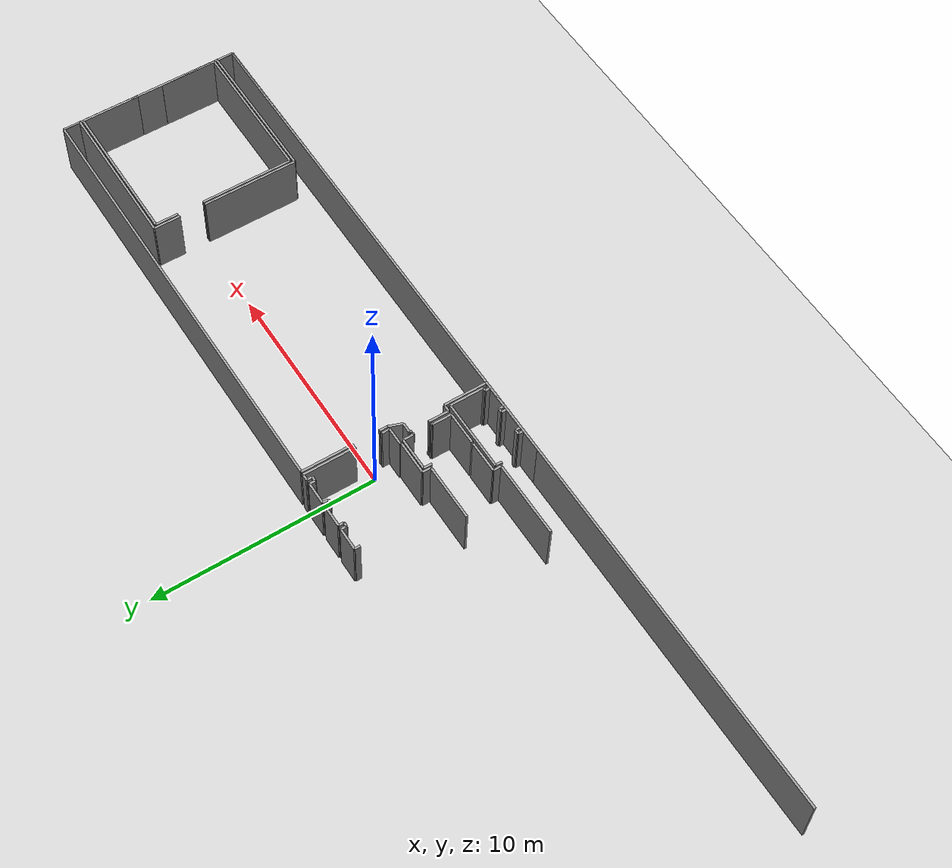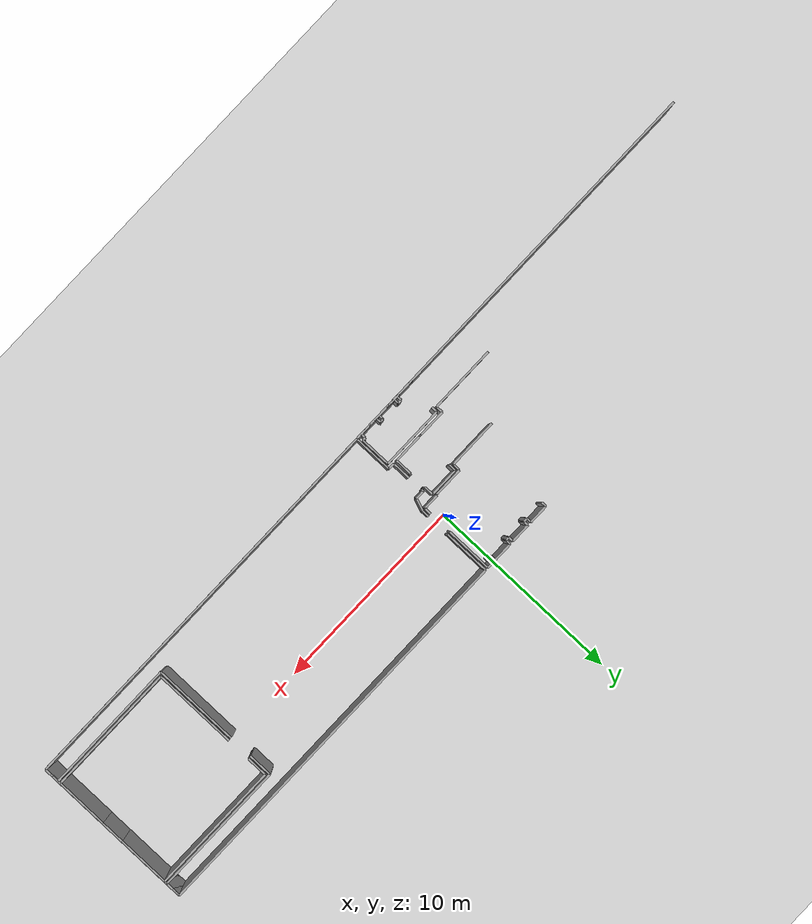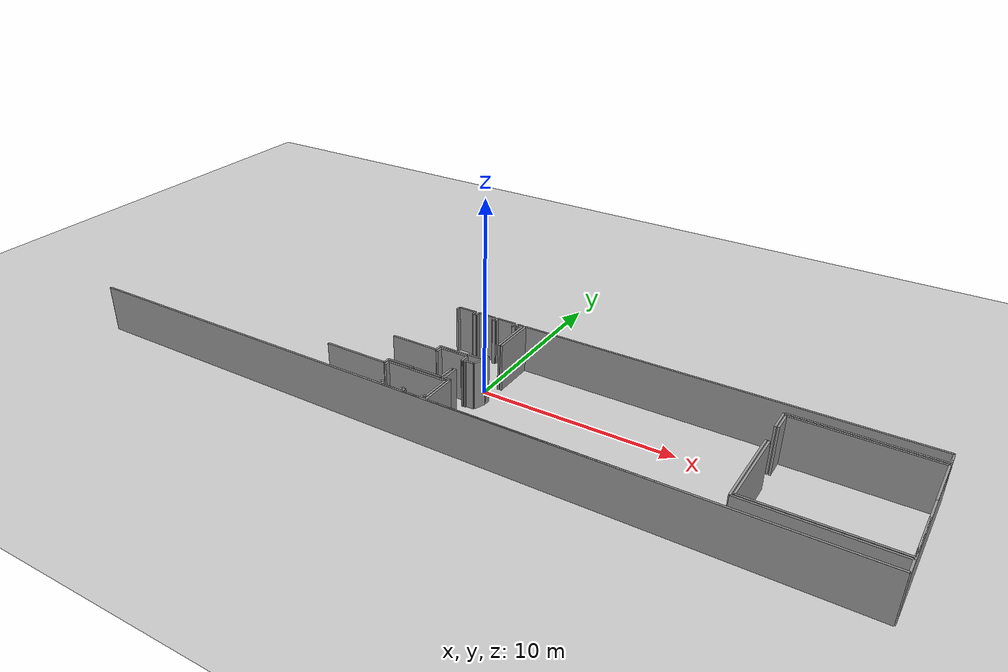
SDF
<sdf version="1.6">
 <world name="default">
  <model name="ground_plane">
   <static>1</static>
   <link name="link">
    <collision name="collision">
     <geometry><plane><normal>0 0 1</normal><size>100 100</size></plane></geometry>
     <surface><friction><ode><mu>100</mu><mu2>50</mu2></ode></friction></surface>
    </collision>
    <visual name="visual">
     <cast_shadows>0</cast_shadows>
     <geometry><plane><normal>0 0 1</normal><size>100 100</size></plane></geometry>
     <material>
      <script><uri>file://media/materials/scripts/gazebo.material</uri><name>Gazebo/Grey</name></script>
     </material>
    </visual>
   </link>
  </model>
  <model name="0510025536_Layout1_PLAN5">
   <static>1</static>
   <link name="Wall_7">
    <collision name="Wall_7_Collision">
     <geometry><box><size>1.38529183769 0.1 2.5</size></box></geometry>
     <pose>0.692645918847 0 1.25 0 0 0</pose>
    </collision>
    <visual name="Wall_7_Visual">
     <pose>0.692645918847 0 1.25 0 0 0</pose>
     <geometry><box><size>1.38529183769 0.1 2.5</size></box></geometry>
     <material>
      <script><uri>file://media/materials/scripts/gazebo.material</uri><name>Gazebo/Grey</name></script>
      <ambient>1 1 1 1</ambient>
     </material>
    </visual>
    <pose>18.5006036268 -6.22759909011 0 0 0 3.14159265359</pose>
   </link>
   <link name="Wall_8">
    <collision name="Wall_8_Collision">
     <geometry><box><size>0.352708696039 0.1 2.5</size></box></geometry>
     <pose>0.176354348019 0 1.25 0 0 0</pose>
    </collision>
    <visual name="Wall_8_Visual">
     <pose>0.176354348019 0 1.25 0 0 0</pose>
     <geometry><box><size>0.352708696039 0.1 2.5</size></box></geometry>
     <material>
      <script><uri>file://media/materials/scripts/gazebo.material</uri><name>Gazebo/Grey</name></script>
      <ambient>1 1 1 1</ambient>
     </material>
    </visual>
    <pose>17.1153117891 -6.22759909011 0 0 0 -1.57079632679</pose>
   </link>
   <link name="Wall_9">
    <collision name="Wall_9_Collision">
     <geometry><box><size>3.36258276042 0.1 2.5</size></box></geometry>
     <pose>1.68129138021 0 1.25 0 0 0</pose>
    </collision>
    <visual name="Wall_9_Visual">
     <pose>1.68129138021 0 1.25 0 0 0</pose>
     <geometry><box><size>3.36258276042 0.1 2.5</size></box></geometry>
     <material>
      <script><uri>file://media/materials/scripts/gazebo.material</uri><name>Gazebo/Grey</name></script>
      <ambient>1 1 1 1</ambient>
     </material>
    </visual>
    <pose>17.1153117891 -6.58030778615 0 0 0 3.14159265359</pose>
   </link>
   <link name="Wall_110">
    <collision name="Wall_110_Collision">
     <geometry><box><size>0.243649210202 0.1 2.5</size></box></geometry>
     <pose>0.121824605101 0 1.25 0 0 0</pose>
    </collision>
    <visual name="Wall_110_Visual">
     <pose>0.121824605101 0 1.25 0 0 0</pose>
     <geometry><box><size>0.243649210202 0.1 2.5</size></box></geometry>
     <material>
      <script><uri>file://media/materials/scripts/gazebo.material</uri><name>Gazebo/Grey</name></script>
      <ambient>1 1 1 1</ambient>
     </material>
    </visual>
    <pose>17.0013851648 -0.248814985195 0 0 0 1.57079632679</pose>
   </link>
   <link name="Wall_111">
    <collision name="Wall_111_Collision">
     <geometry><box><size>0.972538155571 0.1 2.5</size></box></geometry>
     <pose>0.486269077785 0 1.25 0 0 0</pose>
    </collision>
    <visual name="Wall_111_Visual">
     <pose>0.486269077785 0 1.25 0 0 0</pose>
     <geometry><box><size>0.972538155571 0.1 2.5</size></box></geometry>
     <material>
      <script><uri>file://media/materials/scripts/gazebo.material</uri><name>Gazebo/Grey</name></script>
      <ambient>1 1 1 1</ambient>
     </material>
    </visual>
    <pose>17.0013851648 -0.00516577499333 0 0 0 0.0</pose>
   </link>
   <link name="Wall_112">
    <collision name="Wall_112_Collision">
     <geometry><box><size>0.242715177085 0.1 2.5</size></box></geometry>
     <pose>0.121357588543 0 1.25 0 0 0</pose>
    </collision>
    <visual name="Wall_112_Visual">
     <pose>0.121357588543 0 1.25 0 0 0</pose>
     <geometry><box><size>0.242715177085 0.1 2.5</size></box></geometry>
     <material>
      <script><uri>file://media/materials/scripts/gazebo.material</uri><name>Gazebo/Grey</name></script>
      <ambient>1 1 1 1</ambient>
     </material>
    </visual>
    <pose>17.9739233203 -0.00516577499333 0 0 0 -1.57079632679</pose>
   </link>
   <link name="Wall_113">
    <collision name="Wall_113_Collision">
     <geometry><box><size>0.189030511748 0.1 2.5</size></box></geometry>
     <pose>0.0945152558742 0 1.25 0 0 0</pose>
    </collision>
    <visual name="Wall_113_Visual">
     <pose>0.0945152558742 0 1.25 0 0 0</pose>
     <geometry><box><size>0.189030511748 0.1 2.5</size></box></geometry>
     <material>
      <script><uri>file://media/materials/scripts/gazebo.material</uri><name>Gazebo/Grey</name></script>
      <ambient>1 1 1 1</ambient>
     </material>
    </visual>
    <pose>17.9739233203 -0.247880952078 0 0 0 0.0</pose>
   </link>
   <link name="Wall_114">
    <collision name="Wall_114_Collision">
     <geometry><box><size>0.238871027182 0.1 2.5</size></box></geometry>
     <pose>0.119435513591 0 1.25 0 0 0</pose>
    </collision>
    <visual name="Wall_114_Visual">
     <pose>0.119435513591 0 1.25 0 0 0</pose>
     <geometry><box><size>0.238871027182 0.1 2.5</size></box></geometry>
     <material>
      <script><uri>file://media/materials/scripts/gazebo.material</uri><name>Gazebo/Grey</name></script>
      <ambient>1 1 1 1</ambient>
     </material>
    </visual>
    <pose>18.1629538321 -0.247880952078 0 0 0 1.57079632679</pose>
   </link>
   <link name="Wall_115">
    <collision name="Wall_115_Collision">
     <geometry><box><size>0.975270361287 0.1 2.5</size></box></geometry>
     <pose>0.487635180643 0 1.25 0 0 0</pose>
    </collision>
    <visual name="Wall_115_Visual">
     <pose>0.487635180643 0 1.25 0 0 0</pose>
     <geometry><box><size>0.975270361287 0.1 2.5</size></box></geometry>
     <material>
      <script><uri>file://media/materials/scripts/gazebo.material</uri><name>Gazebo/Grey</name></script>
      <ambient>1 1 1 1</ambient>
     </material>
    </visual>
    <pose>18.1629538321 -0.00900992489611 0 0 0 0.0</pose>
   </link>
   <link name="Wall_116">
    <collision name="Wall_116_Collision">
     <geometry><box><size>0.247448882337 0.1 2.5</size></box></geometry>
     <pose>0.123724441169 0 1.25 0 0 0</pose>
    </collision>
    <visual name="Wall_116_Visual">
     <pose>0.123724441169 0 1.25 0 0 0</pose>
     <geometry><box><size>0.247448882337 0.1 2.5</size></box></geometry>
     <material>
      <script><uri>file://media/materials/scripts/gazebo.material</uri><name>Gazebo/Grey</name></script>
      <ambient>1 1 1 1</ambient>
     </material>
    </visual>
    <pose>19.1382241934 -0.00900992489611 0 0 0 -1.57079632679</pose>
   </link>
   <link name="Wall_117">
    <collision name="Wall_117_Collision">
     <geometry><box><size>0.175178864165 0.1 2.5</size></box></geometry>
     <pose>0.0875894320824 0 1.25 0 0 0</pose>
    </collision>
    <visual name="Wall_117_Visual">
     <pose>0.0875894320824 0 1.25 0 0 0</pose>
     <geometry><box><size>0.175178864165 0.1 2.5</size></box></geometry>
     <material>
      <script><uri>file://media/materials/scripts/gazebo.material</uri><name>Gazebo/Grey</name></script>
      <ambient>1 1 1 1</ambient>
     </material>
    </visual>
    <pose>19.1382241934 -0.256458807233 0 0 0 0.0</pose>
   </link>
   <link name="Wall_118">
    <collision name="Wall_118_Collision">
     <geometry><box><size>0.249253408903 0.1 2.5</size></box></geometry>
     <pose>0.124626704452 0 1.25 0 0 0</pose>
    </collision>
    <visual name="Wall_118_Visual">
     <pose>0.124626704452 0 1.25 0 0 0</pose>
     <geometry><box><size>0.249253408903 0.1 2.5</size></box></geometry>
     <material>
      <script><uri>file://media/materials/scripts/gazebo.material</uri><name>Gazebo/Grey</name></script>
      <ambient>1 1 1 1</ambient>
     </material>
    </visual>
    <pose>19.3134030575 -0.256458807233 0 0 0 1.57079632679</pose>
   </link>
   <link name="Wall_119">
    <collision name="Wall_119_Collision">
     <geometry><box><size>0.973554790256 0.1 2.5</size></box></geometry>
     <pose>0.486777395128 0 1.25 0 0 0</pose>
    </collision>
    <visual name="Wall_119_Visual">
     <pose>0.486777395128 0 1.25 0 0 0</pose>
     <geometry><box><size>0.973554790256 0.1 2.5</size></box></geometry>
     <material>
      <script><uri>file://media/materials/scripts/gazebo.material</uri><name>Gazebo/Grey</name></script>
      <ambient>1 1 1 1</ambient>
     </material>
    </visual>
    <pose>19.3134030575 -0.00720539833018 0 0 0 0.0</pose>
   </link>
   <link name="Wall_120">
    <collision name="Wall_120_Collision">
     <geometry><box><size>0.245638001805 0.1 2.5</size></box></geometry>
     <pose>0.122819000902 0 1.25 0 0 0</pose>
    </collision>
    <visual name="Wall_120_Visual">
     <pose>0.122819000902 0 1.25 0 0 0</pose>
     <geometry><box><size>0.245638001805 0.1 2.5</size></box></geometry>
     <material>
      <script><uri>file://media/materials/scripts/gazebo.material</uri><name>Gazebo/Grey</name></script>
      <ambient>1 1 1 1</ambient>
     </material>
    </visual>
    <pose>20.2869578478 -0.00720539833018 0 0 0 -1.57079632679</pose>
   </link>
   <link name="Wall_121">
    <collision name="Wall_121_Collision">
     <geometry><box><size>0.19684589089 0.1 2.5</size></box></geometry>
     <pose>0.0984229454448 0 1.25 0 0 0</pose>
    </collision>
    <visual name="Wall_121_Visual">
     <pose>0.0984229454448 0 1.25 0 0 0</pose>
     <geometry><box><size>0.19684589089 0.1 2.5</size></box></geometry>
     <material>
      <script><uri>file://media/materials/scripts/gazebo.material</uri><name>Gazebo/Grey</name></script>
      <ambient>1 1 1 1</ambient>
     </material>
    </visual>
    <pose>20.2869578478 -0.252843400135 0 0 0 0.0</pose>
   </link>
   <link name="Wall_122">
    <collision name="Wall_122_Collision">
     <geometry><box><size>0.245638001805 0.1 2.5</size></box></geometry>
     <pose>0.122819000902 0 1.25 0 0 0</pose>
    </collision>
    <visual name="Wall_122_Visual">
     <pose>0.122819000902 0 1.25 0 0 0</pose>
     <geometry><box><size>0.245638001805 0.1 2.5</size></box></geometry>
     <material>
      <script><uri>file://media/materials/scripts/gazebo.material</uri><name>Gazebo/Grey</name></script>
      <ambient>1 1 1 1</ambient>
     </material>
    </visual>
    <pose>20.4838037387 -0.252843400135 0 0 0 1.57079632679</pose>
   </link>
   <link name="Wall_123">
    <collision name="Wall_123_Collision">
     <geometry><box><size>0.276334015326 0.1 2.5</size></box></geometry>
     <pose>0.138167007663 0 1.25 0 0 0</pose>
    </collision>
    <visual name="Wall_123_Visual">
     <pose>0.138167007663 0 1.25 0 0 0</pose>
     <geometry><box><size>0.276334015326 0.1 2.5</size></box></geometry>
     <material>
      <script><uri>file://media/materials/scripts/gazebo.material</uri><name>Gazebo/Grey</name></script>
      <ambient>1 1 1 1</ambient>
     </material>
    </visual>
    <pose>20.4838037387 -0.00720539833018 0 0 0 0.0</pose>
   </link>
   <link name="Wall_124">
    <collision name="Wall_124_Collision">
     <geometry><box><size>2.31746959627 0.1 2.5</size></box></geometry>
     <pose>1.15873479813 0 1.25 0 0 0</pose>
    </collision>
    <visual name="Wall_124_Visual">
     <pose>1.15873479813 0 1.25 0 0 0</pose>
     <geometry><box><size>2.31746959627 0.1 2.5</size></box></geometry>
     <material>
      <script><uri>file://media/materials/scripts/gazebo.material</uri><name>Gazebo/Grey</name></script>
      <ambient>1 1 1 1</ambient>
     </material>
    </visual>
    <pose>20.760137754 -0.00720539833018 0 0 0 -1.57079632679</pose>
   </link>
   <link name="Wall_125">
    <collision name="Wall_125_Collision">
     <geometry><box><size>0.357474171125 0.1 2.5</size></box></geometry>
     <pose>0.178737085563 0 1.25 0 0 0</pose>
    </collision>
    <visual name="Wall_125_Visual">
     <pose>0.178737085563 0 1.25 0 0 0</pose>
     <geometry><box><size>0.357474171125 0.1 2.5</size></box></geometry>
     <material>
      <script><uri>file://media/materials/scripts/gazebo.material</uri><name>Gazebo/Grey</name></script>
      <ambient>1 1 1 1</ambient>
     </material>
    </visual>
    <pose>20.760137754 -3.50066716651 0 0 0 -1.57079632679</pose>
   </link>
   <link name="Wall_126">
    <collision name="Wall_126_Collision">
     <geometry><box><size>0.789607451932 0.1 2.5</size></box></geometry>
     <pose>0.394803725966 0 1.25 0 0 0</pose>
    </collision>
    <visual name="Wall_126_Visual">
     <pose>0.394803725966 0 1.25 0 0 0</pose>
     <geometry><box><size>0.789607451932 0.1 2.5</size></box></geometry>
     <material>
      <script><uri>file://media/materials/scripts/gazebo.material</uri><name>Gazebo/Grey</name></script>
      <ambient>1 1 1 1</ambient>
     </material>
    </visual>
    <pose>20.760137754 -3.85814133764 0 0 0 3.14159265359</pose>
   </link>
   <link name="Wall_127">
    <collision name="Wall_127_Collision">
     <geometry><box><size>0.0453673228196 0.1 2.5</size></box></geometry>
     <pose>0.0226836614098 0 1.25 0 0 0</pose>
    </collision>
    <visual name="Wall_127_Visual">
     <pose>0.0226836614098 0 1.25 0 0 0</pose>
     <geometry><box><size>0.0453673228196 0.1 2.5</size></box></geometry>
     <material>
      <script><uri>file://media/materials/scripts/gazebo.material</uri><name>Gazebo/Grey</name></script>
      <ambient>1 1 1 1</ambient>
     </material>
    </visual>
    <pose>19.9705303021 -3.85814133764 0 0 0 -1.57079632679</pose>
   </link>
   <link name="Wall_128">
    <collision name="Wall_128_Collision">
     <geometry><box><size>1.50493703219 0.1 2.5</size></box></geometry>
     <pose>0.752468516095 0 1.25 0 0 0</pose>
    </collision>
    <visual name="Wall_128_Visual">
     <pose>0.752468516095 0 1.25 0 0 0</pose>
     <geometry><box><size>1.50493703219 0.1 2.5</size></box></geometry>
     <material>
      <script><uri>file://media/materials/scripts/gazebo.material</uri><name>Gazebo/Grey</name></script>
      <ambient>1 1 1 1</ambient>
     </material>
    </visual>
    <pose>19.9705303021 -3.90350866046 0 0 0 3.14159265359</pose>
   </link>
   <link name="Wall_129">
    <collision name="Wall_129_Collision">
     <geometry><box><size>0.377044388812 0.1 2.5</size></box></geometry>
     <pose>0.188522194406 0 1.25 0 0 0</pose>
    </collision>
    <visual name="Wall_129_Visual">
     <pose>0.188522194406 0 1.25 0 0 0</pose>
     <geometry><box><size>0.377044388812 0.1 2.5</size></box></geometry>
     <material>
      <script><uri>file://media/materials/scripts/gazebo.material</uri><name>Gazebo/Grey</name></script>
      <ambient>1 1 1 1</ambient>
     </material>
    </visual>
    <pose>18.4655932699 -3.90350866046 0 0 0 -1.57079632679</pose>
   </link>
   <link name="Wall_130">
    <collision name="Wall_130_Collision">
     <geometry><box><size>2.51045227536 0.1 2.5</size></box></geometry>
     <pose>1.25522613768 0 1.25 0 0 0</pose>
    </collision>
    <visual name="Wall_130_Visual">
     <pose>1.25522613768 0 1.25 0 0 0</pose>
     <geometry><box><size>2.51045227536 0.1 2.5</size></box></geometry>
     <material>
      <script><uri>file://media/materials/scripts/gazebo.material</uri><name>Gazebo/Grey</name></script>
      <ambient>1 1 1 1</ambient>
     </material>
    </visual>
    <pose>18.4655932699 -4.28055304927 0 0 0 3.14159265359</pose>
   </link>
   <link name="Wall_138">
    <collision name="Wall_138_Collision">
     <geometry><box><size>0.294760518992 0.1 2.5</size></box></geometry>
     <pose>0.147380259496 0 1.25 0 0 0</pose>
    </collision>
    <visual name="Wall_138_Visual">
     <pose>0.147380259496 0 1.25 0 0 0</pose>
     <geometry><box><size>0.294760518992 0.1 2.5</size></box></geometry>
     <material>
      <script><uri>file://media/materials/scripts/gazebo.material</uri><name>Gazebo/Grey</name></script>
      <ambient>1 1 1 1</ambient>
     </material>
    </visual>
    <pose>17.2616436441 -6.71024640683 0 0 0 1.57079632679</pose>
   </link>
   <link name="Wall_139">
    <collision name="Wall_139_Collision">
     <geometry><box><size>3.17857188243 0.1 2.5</size></box></geometry>
     <pose>1.58928594121 0 1.25 0 0 0</pose>
    </collision>
    <visual name="Wall_139_Visual">
     <pose>1.58928594121 0 1.25 0 0 0</pose>
     <geometry><box><size>3.17857188243 0.1 2.5</size></box></geometry>
     <material>
      <script><uri>file://media/materials/scripts/gazebo.material</uri><name>Gazebo/Grey</name></script>
      <ambient>1 1 1 1</ambient>
     </material>
    </visual>
    <pose>17.2616436441 -6.41548588784 0 0 0 0.0</pose>
   </link>
   <link name="Wall_140">
    <collision name="Wall_140_Collision">
     <geometry><box><size>1.52272813918 0.1 2.5</size></box></geometry>
     <pose>0.761364069589 0 1.25 0 0 0</pose>
    </collision>
    <visual name="Wall_140_Visual">
     <pose>0.761364069589 0 1.25 0 0 0</pose>
     <geometry><box><size>1.52272813918 0.1 2.5</size></box></geometry>
     <material>
      <script><uri>file://media/materials/scripts/gazebo.material</uri><name>Gazebo/Grey</name></script>
      <ambient>1 1 1 1</ambient>
     </material>
    </visual>
    <pose>20.4402155266 -6.41548588784 0 0 0 -1.57079632679</pose>
   </link>
   <link name="Wall_141">
    <collision name="Wall_141_Collision">
     <geometry><box><size>0.15147856807 0.1 2.5</size></box></geometry>
     <pose>0.075739284035 0 1.25 0 0 0</pose>
    </collision>
    <visual name="Wall_141_Visual">
     <pose>0.075739284035 0 1.25 0 0 0</pose>
     <geometry><box><size>0.15147856807 0.1 2.5</size></box></geometry>
     <material>
      <script><uri>file://media/materials/scripts/gazebo.material</uri><name>Gazebo/Grey</name></script>
      <ambient>1 1 1 1</ambient>
     </material>
    </visual>
    <pose>20.4402155266 -7.93821402702 0 0 0 3.14159265359</pose>
   </link>
   <link name="Wall_142">
    <collision name="Wall_142_Collision">
     <geometry><box><size>0.234779072575 0.1 2.5</size></box></geometry>
     <pose>0.117389536288 0 1.25 0 0 0</pose>
    </collision>
    <visual name="Wall_142_Visual">
     <pose>0.117389536288 0 1.25 0 0 0</pose>
     <geometry><box><size>0.234779072575 0.1 2.5</size></box></geometry>
     <material>
      <script><uri>file://media/materials/scripts/gazebo.material</uri><name>Gazebo/Grey</name></script>
      <ambient>1 1 1 1</ambient>
     </material>
    </visual>
    <pose>20.2887369585 -7.93821402702 0 0 0 -1.57079632679</pose>
   </link>
   <link name="Wall_143">
    <collision name="Wall_143_Collision">
     <geometry><box><size>0.973554790256 0.1 2.5</size></box></geometry>
     <pose>0.486777395128 0 1.25 0 0 0</pose>
    </collision>
    <visual name="Wall_143_Visual">
     <pose>0.486777395128 0 1.25 0 0 0</pose>
     <geometry><box><size>0.973554790256 0.1 2.5</size></box></geometry>
     <material>
      <script><uri>file://media/materials/scripts/gazebo.material</uri><name>Gazebo/Grey</name></script>
      <ambient>1 1 1 1</ambient>
     </material>
    </visual>
    <pose>20.2887369585 -8.17299309959 0 0 0 3.14159265359</pose>
   </link>
   <link name="Wall_144">
    <collision name="Wall_144_Collision">
     <geometry><box><size>0.232999961876 0.1 2.5</size></box></geometry>
     <pose>0.116499980938 0 1.25 0 0 0</pose>
    </collision>
    <visual name="Wall_144_Visual">
     <pose>0.116499980938 0 1.25 0 0 0</pose>
     <geometry><box><size>0.232999961876 0.1 2.5</size></box></geometry>
     <material>
      <script><uri>file://media/materials/scripts/gazebo.material</uri><name>Gazebo/Grey</name></script>
      <ambient>1 1 1 1</ambient>
     </material>
    </visual>
    <pose>19.3151821682 -8.17299309959 0 0 0 1.57079632679</pose>
   </link>
   <link name="Wall_145">
    <collision name="Wall_145_Collision">
     <geometry><box><size>0.17880062523 0.1 2.5</size></box></geometry>
     <pose>0.0894003126152 0 1.25 0 0 0</pose>
    </collision>
    <visual name="Wall_145_Visual">
     <pose>0.0894003126152 0 1.25 0 0 0</pose>
     <geometry><box><size>0.17880062523 0.1 2.5</size></box></geometry>
     <material>
      <script><uri>file://media/materials/scripts/gazebo.material</uri><name>Gazebo/Grey</name></script>
      <ambient>1 1 1 1</ambient>
     </material>
    </visual>
    <pose>19.3151821682 -7.93999313772 0 0 0 3.14159265359</pose>
   </link>
   <link name="Wall_146">
    <collision name="Wall_146_Collision">
     <geometry><box><size>0.231220851177 0.1 2.5</size></box></geometry>
     <pose>0.115610425589 0 1.25 0 0 0</pose>
    </collision>
    <visual name="Wall_146_Visual">
     <pose>0.115610425589 0 1.25 0 0 0</pose>
     <geometry><box><size>0.231220851177 0.1 2.5</size></box></geometry>
     <material>
      <script><uri>file://media/materials/scripts/gazebo.material</uri><name>Gazebo/Grey</name></script>
      <ambient>1 1 1 1</ambient>
     </material>
    </visual>
    <pose>19.136381543 -7.93999313772 0 0 0 -1.57079632679</pose>
   </link>
   <link name="Wall_147">
    <collision name="Wall_147_Collision">
     <geometry><box><size>0.976350535639 0.1 2.5</size></box></geometry>
     <pose>0.48817526782 0 1.25 0 0 0</pose>
    </collision>
    <visual name="Wall_147_Visual">
     <pose>0.48817526782 0 1.25 0 0 0</pose>
     <geometry><box><size>0.976350535639 0.1 2.5</size></box></geometry>
     <material>
      <script><uri>file://media/materials/scripts/gazebo.material</uri><name>Gazebo/Grey</name></script>
      <ambient>1 1 1 1</ambient>
     </material>
    </visual>
    <pose>19.136381543 -8.17121398889 0 0 0 3.14159265359</pose>
   </link>
   <link name="Wall_148">
    <collision name="Wall_148_Collision">
     <geometry><box><size>0.234906151911 0.1 2.5</size></box></geometry>
     <pose>0.117453075955 0 1.25 0 0 0</pose>
    </collision>
    <visual name="Wall_148_Visual">
     <pose>0.117453075955 0 1.25 0 0 0</pose>
     <geometry><box><size>0.234906151911 0.1 2.5</size></box></geometry>
     <material>
      <script><uri>file://media/materials/scripts/gazebo.material</uri><name>Gazebo/Grey</name></script>
      <ambient>1 1 1 1</ambient>
     </material>
    </visual>
    <pose>18.1600310074 -8.17121398889 0 0 0 1.57079632679</pose>
   </link>
   <link name="Wall_149">
    <collision name="Wall_149_Collision">
     <geometry><box><size>0.184392115998 0.1 2.5</size></box></geometry>
     <pose>0.092196057999 0 1.25 0 0 0</pose>
    </collision>
    <visual name="Wall_149_Visual">
     <pose>0.092196057999 0 1.25 0 0 0</pose>
     <geometry><box><size>0.184392115998 0.1 2.5</size></box></geometry>
     <material>
      <script><uri>file://media/materials/scripts/gazebo.material</uri><name>Gazebo/Grey</name></script>
      <ambient>1 1 1 1</ambient>
     </material>
    </visual>
    <pose>18.1600310074 -7.93630783698 0 0 0 3.14159265359</pose>
   </link>
   <link name="Wall_150">
    <collision name="Wall_150_Collision">
     <geometry><box><size>0.244500641751 0.1 2.5</size></box></geometry>
     <pose>0.122250320875 0 1.25 0 0 0</pose>
    </collision>
    <visual name="Wall_150_Visual">
     <pose>0.122250320875 0 1.25 0 0 0</pose>
     <geometry><box><size>0.244500641751 0.1 2.5</size></box></geometry>
     <material>
      <script><uri>file://media/materials/scripts/gazebo.material</uri><name>Gazebo/Grey</name></script>
      <ambient>1 1 1 1</ambient>
     </material>
    </visual>
    <pose>17.9756388914 -7.93630783698 0 0 0 -1.57079632679</pose>
   </link>
   <link name="Wall_151">
    <collision name="Wall_151_Collision">
     <geometry><box><size>0.979591058698 0.1 2.5</size></box></geometry>
     <pose>0.489795529349 0 1.25 0 0 0</pose>
    </collision>
    <visual name="Wall_151_Visual">
     <pose>0.489795529349 0 1.25 0 0 0</pose>
     <geometry><box><size>0.979591058698 0.1 2.5</size></box></geometry>
     <material>
      <script><uri>file://media/materials/scripts/gazebo.material</uri><name>Gazebo/Grey</name></script>
      <ambient>1 1 1 1</ambient>
     </material>
    </visual>
    <pose>17.9756388914 -8.18080847873 0 0 0 3.14159265359</pose>
   </link>
   <link name="Wall_180">
    <collision name="Wall_180_Collision">
     <geometry><box><size>1.46954543722 0.1 2.5</size></box></geometry>
     <pose>0.734772718608 0 1.25 0 0 0</pose>
    </collision>
    <visual name="Wall_180_Visual">
     <pose>0.734772718608 0 1.25 0 0 0</pose>
     <geometry><box><size>1.46954543722 0.1 2.5</size></box></geometry>
     <material>
      <script><uri>file://media/materials/scripts/gazebo.material</uri><name>Gazebo/Grey</name></script>
      <ambient>1 1 1 1</ambient>
     </material>
    </visual>
    <pose>18.5970568426 -4.03446391582 0 0 0 0.0</pose>
   </link>
   <link name="Wall_181">
    <collision name="Wall_181_Collision">
     <geometry><box><size>0.468350891462 0.1 2.5</size></box></geometry>
     <pose>0.234175445731 0 1.25 0 0 0</pose>
    </collision>
    <visual name="Wall_181_Visual">
     <pose>0.234175445731 0 1.25 0 0 0</pose>
     <geometry><box><size>0.468350891462 0.1 2.5</size></box></geometry>
     <material>
      <script><uri>file://media/materials/scripts/gazebo.material</uri><name>Gazebo/Grey</name></script>
      <ambient>1 1 1 1</ambient>
     </material>
    </visual>
    <pose>20.0666022798 -4.03446391582 0 0 0 -1.57079632679</pose>
   </link>
   <link name="Wall_182">
    <collision name="Wall_182_Collision">
     <geometry><box><size>0.0686228412398 0.1 2.5</size></box></geometry>
     <pose>0.0343114206199 0 1.25 0 0 0</pose>
    </collision>
    <visual name="Wall_182_Visual">
     <pose>0.0343114206199 0 1.25 0 0 0</pose>
     <geometry><box><size>0.0686228412398 0.1 2.5</size></box></geometry>
     <material>
      <script><uri>file://media/materials/scripts/gazebo.material</uri><name>Gazebo/Grey</name></script>
      <ambient>1 1 1 1</ambient>
     </material>
    </visual>
    <pose>20.0666022798 -4.50281480728 0 0 0 0.0</pose>
   </link>
   <link name="Wall_183">
    <collision name="Wall_183_Collision">
     <geometry><box><size>0.0415549427508 0.1 2.5</size></box></geometry>
     <pose>0.0207774713754 0 1.25 0 0 0</pose>
    </collision>
    <visual name="Wall_183_Visual">
     <pose>0.0207774713754 0 1.25 0 0 0</pose>
     <geometry><box><size>0.0415549427508 0.1 2.5</size></box></geometry>
     <material>
      <script><uri>file://media/materials/scripts/gazebo.material</uri><name>Gazebo/Grey</name></script>
      <ambient>1 1 1 1</ambient>
     </material>
    </visual>
    <pose>20.135225121 -4.50281480728 0 0 0 -1.57079632679</pose>
   </link>
   <link name="Wall_184">
    <collision name="Wall_184_Collision">
     <geometry><box><size>0.0377425626819 0.1 2.5</size></box></geometry>
     <pose>0.0188712813409 0 1.25 0 0 0</pose>
    </collision>
    <visual name="Wall_184_Visual">
     <pose>0.0188712813409 0 1.25 0 0 0</pose>
     <geometry><box><size>0.0377425626819 0.1 2.5</size></box></geometry>
     <material>
      <script><uri>file://media/materials/scripts/gazebo.material</uri><name>Gazebo/Grey</name></script>
      <ambient>1 1 1 1</ambient>
     </material>
    </visual>
    <pose>20.135225121 -5.32342961711 0 0 0 -1.57079632679</pose>
   </link>
   <link name="Wall_185">
    <collision name="Wall_185_Collision">
     <geometry><box><size>0.0676062065548 0.1 2.5</size></box></geometry>
     <pose>0.0338031032774 0 1.25 0 0 0</pose>
    </collision>
    <visual name="Wall_185_Visual">
     <pose>0.0338031032774 0 1.25 0 0 0</pose>
     <geometry><box><size>0.0676062065548 0.1 2.5</size></box></geometry>
     <material>
      <script><uri>file://media/materials/scripts/gazebo.material</uri><name>Gazebo/Grey</name></script>
      <ambient>1 1 1 1</ambient>
     </material>
    </visual>
    <pose>20.135225121 -5.36117217979 0 0 0 3.14159265359</pose>
   </link>
   <link name="Wall_186">
    <collision name="Wall_186_Collision">
     <geometry><box><size>0.868523719358 0.1 2.5</size></box></geometry>
     <pose>0.434261859679 0 1.25 0 0 0</pose>
    </collision>
    <visual name="Wall_186_Visual">
     <pose>0.434261859679 0 1.25 0 0 0</pose>
     <geometry><box><size>0.868523719358 0.1 2.5</size></box></geometry>
     <material>
      <script><uri>file://media/materials/scripts/gazebo.material</uri><name>Gazebo/Grey</name></script>
      <ambient>1 1 1 1</ambient>
     </material>
    </visual>
    <pose>20.0676189145 -5.36117217979 0 0 0 -1.57079632679</pose>
   </link>
   <link name="Wall_187">
    <collision name="Wall_187_Collision">
     <geometry><box><size>1.47488276931 0.1 2.5</size></box></geometry>
     <pose>0.737441384656 0 1.25 0 0 0</pose>
    </collision>
    <visual name="Wall_187_Visual">
     <pose>0.737441384656 0 1.25 0 0 0</pose>
     <geometry><box><size>1.47488276931 0.1 2.5</size></box></geometry>
     <material>
      <script><uri>file://media/materials/scripts/gazebo.material</uri><name>Gazebo/Grey</name></script>
      <ambient>1 1 1 1</ambient>
     </material>
    </visual>
    <pose>20.0676189145 -6.22969589915 0 0 0 3.14159265359</pose>
   </link>
   <link name="Wall_188">
    <collision name="Wall_188_Collision">
     <geometry><box><size>0.369063683139 0.1 2.5</size></box></geometry>
     <pose>0.18453184157 0 1.25 0 0 0</pose>
    </collision>
    <visual name="Wall_188_Visual">
     <pose>0.18453184157 0 1.25 0 0 0</pose>
     <geometry><box><size>0.369063683139 0.1 2.5</size></box></geometry>
     <material>
      <script><uri>file://media/materials/scripts/gazebo.material</uri><name>Gazebo/Grey</name></script>
      <ambient>1 1 1 1</ambient>
     </material>
    </visual>
    <pose>18.5927361452 -4.40350230649 0 0 0 1.55908887274</pose>
   </link>
   <link name="Wall_189">
    <collision name="Wall_189_Collision">
     <geometry><box><size>4.15562135441 0.1 2.5</size></box></geometry>
     <pose>2.07781067721 0 1.25 0 0 0</pose>
    </collision>
    <visual name="Wall_189_Visual">
     <pose>2.07781067721 0 1.25 0 0 0</pose>
     <geometry><box><size>4.15562135441 0.1 2.5</size></box></geometry>
     <material>
      <script><uri>file://media/materials/scripts/gazebo.material</uri><name>Gazebo/Grey</name></script>
      <ambient>1 1 1 1</ambient>
     </material>
    </visual>
    <pose>34.2432552643 -7.28032430646 0 0 0 1.57079632679</pose>
   </link>
   <link name="Wall_190">
    <collision name="Wall_190_Collision">
     <geometry><box><size>1.03688477717 0.1 2.5</size></box></geometry>
     <pose>0.518442388583 0 1.25 0 0 0</pose>
    </collision>
    <visual name="Wall_190_Visual">
     <pose>0.518442388583 0 1.25 0 0 0</pose>
     <geometry><box><size>1.03688477717 0.1 2.5</size></box></geometry>
     <material>
      <script><uri>file://media/materials/scripts/gazebo.material</uri><name>Gazebo/Grey</name></script>
      <ambient>1 1 1 1</ambient>
     </material>
    </visual>
    <pose>34.2432552643 -1.94852016114 0 0 0 1.57079632679</pose>
   </link>
   <link name="Wall_191">
    <collision name="Wall_191_Collision">
     <geometry><box><size>6.52806547127 0.1 2.5</size></box></geometry>
     <pose>3.26403273564 0 1.25 0 0 0</pose>
    </collision>
    <visual name="Wall_191_Visual">
     <pose>3.26403273564 0 1.25 0 0 0</pose>
     <geometry><box><size>6.52806547127 0.1 2.5</size></box></geometry>
     <material>
      <script><uri>file://media/materials/scripts/gazebo.material</uri><name>Gazebo/Grey</name></script>
      <ambient>1 1 1 1</ambient>
     </material>
    </visual>
    <pose>34.2432552643 -0.91163538397 0 0 0 0.0</pose>
   </link>
   <link name="Wall_192">
    <collision name="Wall_192_Collision">
     <geometry><box><size>2.60250219212 0.1 2.5</size></box></geometry>
     <pose>1.30125109606 0 1.25 0 0 0</pose>
    </collision>
    <visual name="Wall_192_Visual">
     <pose>1.30125109606 0 1.25 0 0 0</pose>
     <geometry><box><size>2.60250219212 0.1 2.5</size></box></geometry>
     <material>
      <script><uri>file://media/materials/scripts/gazebo.material</uri><name>Gazebo/Grey</name></script>
      <ambient>1 1 1 1</ambient>
     </material>
    </visual>
    <pose>40.7713207355 -0.91163538397 0 0 0 -1.57079632679</pose>
   </link>
   <link name="Wall_193">
    <collision name="Wall_193_Collision">
     <geometry><box><size>2.58384059168 0.1 2.5</size></box></geometry>
     <pose>1.29192029584 0 1.25 0 0 0</pose>
    </collision>
    <visual name="Wall_193_Visual">
     <pose>1.29192029584 0 1.25 0 0 0</pose>
     <geometry><box><size>2.58384059168 0.1 2.5</size></box></geometry>
     <material>
      <script><uri>file://media/materials/scripts/gazebo.material</uri><name>Gazebo/Grey</name></script>
      <ambient>1 1 1 1</ambient>
     </material>
    </visual>
    <pose>40.7713207355 -4.69343381073 0 0 0 -1.57079632679</pose>
   </link>
   <link name="Wall_194">
    <collision name="Wall_194_Collision">
     <geometry><box><size>6.52806618373 0.1 2.5</size></box></geometry>
     <pose>3.26403309186 0 1.25 0 0 0</pose>
    </collision>
    <visual name="Wall_194_Visual">
     <pose>3.26403309186 0 1.25 0 0 0</pose>
     <geometry><box><size>6.52806618373 0.1 2.5</size></box></geometry>
     <material>
      <script><uri>file://media/materials/scripts/gazebo.material</uri><name>Gazebo/Grey</name></script>
      <ambient>1 1 1 1</ambient>
     </material>
    </visual>
    <pose>40.7713207355 -7.27727440241 0 0 0 -3.14112545487</pose>
   </link>
   <link name="Wall_195">
    <collision name="Wall_195_Collision">
     <geometry><box><size>1.95193859527 0.1 2.5</size></box></geometry>
     <pose>0.975969297633 0 1.25 0 0 0</pose>
    </collision>
    <visual name="Wall_195_Visual">
     <pose>0.975969297633 0 1.25 0 0 0</pose>
     <geometry><box><size>1.95193859527 0.1 2.5</size></box></geometry>
     <material>
      <script><uri>file://media/materials/scripts/gazebo.material</uri><name>Gazebo/Grey</name></script>
      <ambient>1 1 1 1</ambient>
     </material>
    </visual>
    <pose>20.576126876 -8.1824605101 0 0 0 1.57079632679</pose>
   </link>
   <link name="Wall_196">
    <collision name="Wall_196_Collision">
     <geometry><box><size>0.324560623197 0.1 2.5</size></box></geometry>
     <pose>0.162280311599 0 1.25 0 0 0</pose>
    </collision>
    <visual name="Wall_196_Visual">
     <pose>0.162280311599 0 1.25 0 0 0</pose>
     <geometry><box><size>0.324560623197 0.1 2.5</size></box></geometry>
     <material>
      <script><uri>file://media/materials/scripts/gazebo.material</uri><name>Gazebo/Grey</name></script>
      <ambient>1 1 1 1</ambient>
     </material>
    </visual>
    <pose>20.576126876 -6.23052191483 0 0 0 3.14159265359</pose>
   </link>
   <link name="Wall_197">
    <collision name="Wall_197_Collision">
     <geometry><box><size>0.918592977596 0.1 2.5</size></box></geometry>
     <pose>0.459296488798 0 1.25 0 0 0</pose>
    </collision>
    <visual name="Wall_197_Visual">
     <pose>0.459296488798 0 1.25 0 0 0</pose>
     <geometry><box><size>0.918592977596 0.1 2.5</size></box></geometry>
     <material>
      <script><uri>file://media/materials/scripts/gazebo.material</uri><name>Gazebo/Grey</name></script>
      <ambient>1 1 1 1</ambient>
     </material>
    </visual>
    <pose>20.2515662528 -6.23052191483 0 0 0 1.57079632679</pose>
   </link>
   <link name="Wall_198">
    <collision name="Wall_198_Collision">
     <geometry><box><size>0.102171785846 0.1 2.5</size></box></geometry>
     <pose>0.051085892923 0 1.25 0 0 0</pose>
    </collision>
    <visual name="Wall_198_Visual">
     <pose>0.051085892923 0 1.25 0 0 0</pose>
     <geometry><box><size>0.102171785846 0.1 2.5</size></box></geometry>
     <material>
      <script><uri>file://media/materials/scripts/gazebo.material</uri><name>Gazebo/Grey</name></script>
      <ambient>1 1 1 1</ambient>
     </material>
    </visual>
    <pose>20.2515662528 -4.53528357754 0 0 0 1.57079632679</pose>
   </link>
   <link name="Wall_199">
    <collision name="Wall_199_Collision">
     <geometry><box><size>0.44077467563 0.1 2.5</size></box></geometry>
     <pose>0.220387337815 0 1.25 0 0 0</pose>
    </collision>
    <visual name="Wall_199_Visual">
     <pose>0.220387337815 0 1.25 0 0 0</pose>
     <geometry><box><size>0.44077467563 0.1 2.5</size></box></geometry>
     <material>
      <script><uri>file://media/materials/scripts/gazebo.material</uri><name>Gazebo/Grey</name></script>
      <ambient>1 1 1 1</ambient>
     </material>
    </visual>
    <pose>20.2515662528 -4.43311179169 0 0 0 0.0</pose>
   </link>
   <link name="Wall_200">
    <collision name="Wall_200_Collision">
     <geometry><box><size>0.625897842098 0.1 2.5</size></box></geometry>
     <pose>0.312948921049 0 1.25 0 0 0</pose>
    </collision>
    <visual name="Wall_200_Visual">
     <pose>0.312948921049 0 1.25 0 0 0</pose>
     <geometry><box><size>0.625897842098 0.1 2.5</size></box></geometry>
     <material>
      <script><uri>file://media/materials/scripts/gazebo.material</uri><name>Gazebo/Grey</name></script>
      <ambient>1 1 1 1</ambient>
     </material>
    </visual>
    <pose>20.6923409284 -4.43311179169 0 0 0 1.22011720996</pose>
   </link>
   <link name="Wall_201">
    <collision name="Wall_201_Collision">
     <geometry><box><size>0.355758600094 0.1 2.5</size></box></geometry>
     <pose>0.177879300047 0 1.25 0 0 0</pose>
    </collision>
    <visual name="Wall_201_Visual">
     <pose>0.177879300047 0 1.25 0 0 0</pose>
     <geometry><box><size>0.355758600094 0.1 2.5</size></box></geometry>
     <material>
      <script><uri>file://media/materials/scripts/gazebo.material</uri><name>Gazebo/Grey</name></script>
      <ambient>1 1 1 1</ambient>
     </material>
    </visual>
    <pose>20.9073591643 -3.84530632474 0 0 0 1.57079632679</pose>
   </link>
   <link name="Wall_202">
    <collision name="Wall_202_Collision">
     <geometry><box><size>2.3153410174 0.1 2.5</size></box></geometry>
     <pose>1.1576705087 0 1.25 0 0 0</pose>
    </collision>
    <visual name="Wall_202_Visual">
     <pose>1.1576705087 0 1.25 0 0 0</pose>
     <geometry><box><size>2.3153410174 0.1 2.5</size></box></geometry>
     <material>
      <script><uri>file://media/materials/scripts/gazebo.material</uri><name>Gazebo/Grey</name></script>
      <ambient>1 1 1 1</ambient>
     </material>
    </visual>
    <pose>20.9073591643 -2.3228958839 0 0 0 1.57079632679</pose>
   </link>
   <link name="Wall_203">
    <collision name="Wall_203_Collision">
     <geometry><box><size>19.8692353636 0.1 2.5</size></box></geometry>
     <pose>9.93461768182 0 1.25 0 0 0</pose>
    </collision>
    <visual name="Wall_203_Visual">
     <pose>9.93461768182 0 1.25 0 0 0</pose>
     <geometry><box><size>19.8692353636 0.1 2.5</size></box></geometry>
     <material>
      <script><uri>file://media/materials/scripts/gazebo.material</uri><name>Gazebo/Grey</name></script>
      <ambient>1 1 1 1</ambient>
     </material>
    </visual>
    <pose>20.9073591643 -0.00755486650316 0 0 0 0.0</pose>
   </link>
   <link name="Wall_204">
    <collision name="Wall_204_Collision">
     <geometry><box><size>0.75958495889 0.1 2.5</size></box></geometry>
     <pose>0.379792479445 0 1.25 0 0 0</pose>
    </collision>
    <visual name="Wall_204_Visual">
     <pose>0.379792479445 0 1.25 0 0 0</pose>
     <geometry><box><size>0.75958495889 0.1 2.5</size></box></geometry>
     <material>
      <script><uri>file://media/materials/scripts/gazebo.material</uri><name>Gazebo/Grey</name></script>
      <ambient>1 1 1 1</ambient>
     </material>
    </visual>
    <pose>40.776594528 -0.00755486650316 0 0 0 -1.57079632679</pose>
   </link>
   <link name="Wall_205">
    <collision name="Wall_205_Collision">
     <geometry><box><size>6.67414316758 0.1 2.5</size></box></geometry>
     <pose>3.33707158379 0 1.25 0 0 0</pose>
    </collision>
    <visual name="Wall_205_Visual">
     <pose>3.33707158379 0 1.25 0 0 0</pose>
     <geometry><box><size>6.67414316758 0.1 2.5</size></box></geometry>
     <material>
      <script><uri>file://media/materials/scripts/gazebo.material</uri><name>Gazebo/Grey</name></script>
      <ambient>1 1 1 1</ambient>
     </material>
    </visual>
    <pose>40.776594528 -0.767139825393 0 0 0 3.14159265359</pose>
   </link>
   <link name="Wall_206">
    <collision name="Wall_206_Collision">
     <geometry><box><size>1.19059358758 0.1 2.5</size></box></geometry>
     <pose>0.595296793788 0 1.25 0 0 0</pose>
    </collision>
    <visual name="Wall_206_Visual">
     <pose>0.595296793788 0 1.25 0 0 0</pose>
     <geometry><box><size>1.19059358758 0.1 2.5</size></box></geometry>
     <material>
      <script><uri>file://media/materials/scripts/gazebo.material</uri><name>Gazebo/Grey</name></script>
      <ambient>1 1 1 1</ambient>
     </material>
    </visual>
    <pose>34.1024513604 -0.767139825393 0 0 0 -1.57079632679</pose>
   </link>
   <link name="Wall_207">
    <collision name="Wall_207_Collision">
     <geometry><box><size>4.2896900535 0.1 2.5</size></box></geometry>
     <pose>2.14484502675 0 1.25 0 0 0</pose>
    </collision>
    <visual name="Wall_207_Visual">
     <pose>2.14484502675 0 1.25 0 0 0</pose>
     <geometry><box><size>4.2896900535 0.1 2.5</size></box></geometry>
     <material>
      <script><uri>file://media/materials/scripts/gazebo.material</uri><name>Gazebo/Grey</name></script>
      <ambient>1 1 1 1</ambient>
     </material>
    </visual>
    <pose>34.1024513604 -3.13010382382 0 0 0 -1.57079632679</pose>
   </link>
   <link name="Wall_208">
    <collision name="Wall_208_Collision">
     <geometry><box><size>6.66410390006 0.1 2.5</size></box></geometry>
     <pose>3.33205195003 0 1.25 0 0 0</pose>
    </collision>
    <visual name="Wall_208_Visual">
     <pose>3.33205195003 0 1.25 0 0 0</pose>
     <geometry><box><size>6.66410390006 0.1 2.5</size></box></geometry>
     <material>
      <script><uri>file://media/materials/scripts/gazebo.material</uri><name>Gazebo/Grey</name></script>
      <ambient>1 1 1 1</ambient>
     </material>
    </visual>
    <pose>34.1024513604 -7.41979387732 0 0 0 0.0</pose>
   </link>
   <link name="Wall_209">
    <collision name="Wall_209_Collision">
     <geometry><box><size>0.762094775769 0.1 2.5</size></box></geometry>
     <pose>0.381047387884 0 1.25 0 0 0</pose>
    </collision>
    <visual name="Wall_209_Visual">
     <pose>0.381047387884 0 1.25 0 0 0</pose>
     <geometry><box><size>0.762094775769 0.1 2.5</size></box></geometry>
     <material>
      <script><uri>file://media/materials/scripts/gazebo.material</uri><name>Gazebo/Grey</name></script>
      <ambient>1 1 1 1</ambient>
     </material>
    </visual>
    <pose>40.7665552604 -7.41979387732 0 0 0 -1.57079632679</pose>
   </link>
   <link name="Wall_210">
    <collision name="Wall_210_Collision">
     <geometry><box><size>20.1904283925 0.1 2.5</size></box></geometry>
     <pose>10.0952141963 0 1.25 0 0 0</pose>
    </collision>
    <visual name="Wall_210_Visual">
     <pose>10.0952141963 0 1.25 0 0 0</pose>
     <geometry><box><size>20.1904283925 0.1 2.5</size></box></geometry>
     <material>
      <script><uri>file://media/materials/scripts/gazebo.material</uri><name>Gazebo/Grey</name></script>
      <ambient>1 1 1 1</ambient>
     </material>
    </visual>
    <pose>40.7665552604 -8.18188865309 0 0 0 -3.14156433042</pose>
   </link>
   <link name="Wall_211">
    <collision name="Wall_211_Collision">
     <geometry><box><size>8.18385838279 0.1 2.5</size></box></geometry>
     <pose>4.09192919139 0 1.25 0 0 0</pose>
    </collision>
    <visual name="Wall_211_Visual">
     <pose>4.09192919139 0 1.25 0 0 0</pose>
     <geometry><box><size>8.18385838279 0.1 2.5</size></box></geometry>
     <material>
      <script><uri>file://media/materials/scripts/gazebo.material</uri><name>Gazebo/Grey</name></script>
      <ambient>1 1 1 1</ambient>
     </material>
    </visual>
    <pose>40.776594528 -8.18385838279 0 0 0 1.57079632679</pose>
   </link>
   <link name="Wall_212">
    <collision name="Wall_212_Collision">
     <geometry><box><size>40.776594528 0.1 2.5</size></box></geometry>
     <pose>20.388297264 0 1.25 0 0 0</pose>
    </collision>
    <visual name="Wall_212_Visual">
     <pose>20.388297264 0 1.25 0 0 0</pose>
     <geometry><box><size>40.776594528 0.1 2.5</size></box></geometry>
     <material>
      <script><uri>file://media/materials/scripts/gazebo.material</uri><name>Gazebo/Grey</name></script>
      <ambient>1 1 1 1</ambient>
     </material>
    </visual>
    <pose>40.776594528 -8.18385838279 0 0 0 3.14159265359</pose>
   </link>
   <pose>-20.35 2.93385838279 0 0 0 0</pose>
  </model>
 </world>
</sdf>
